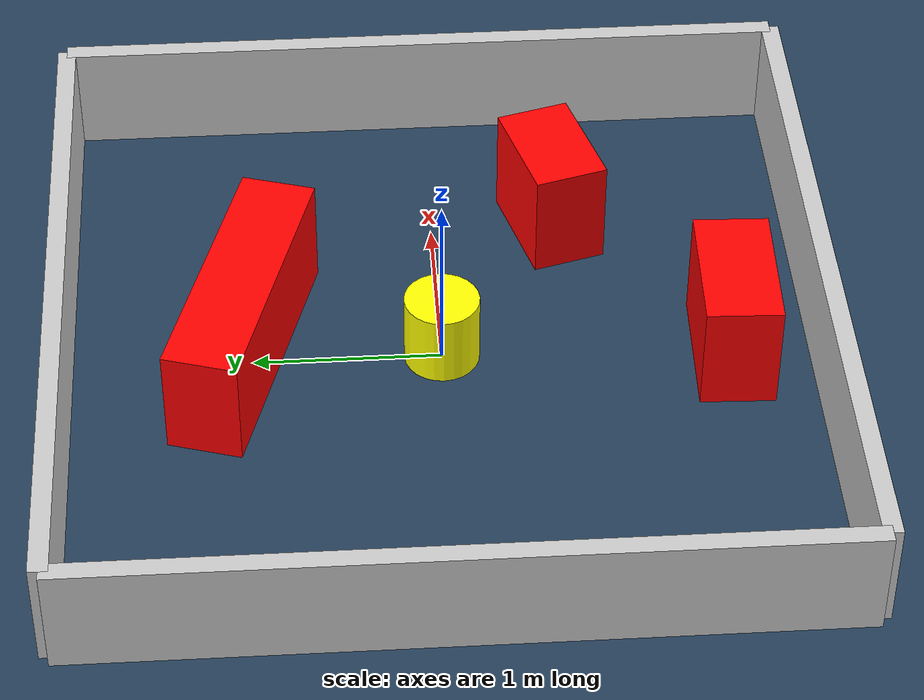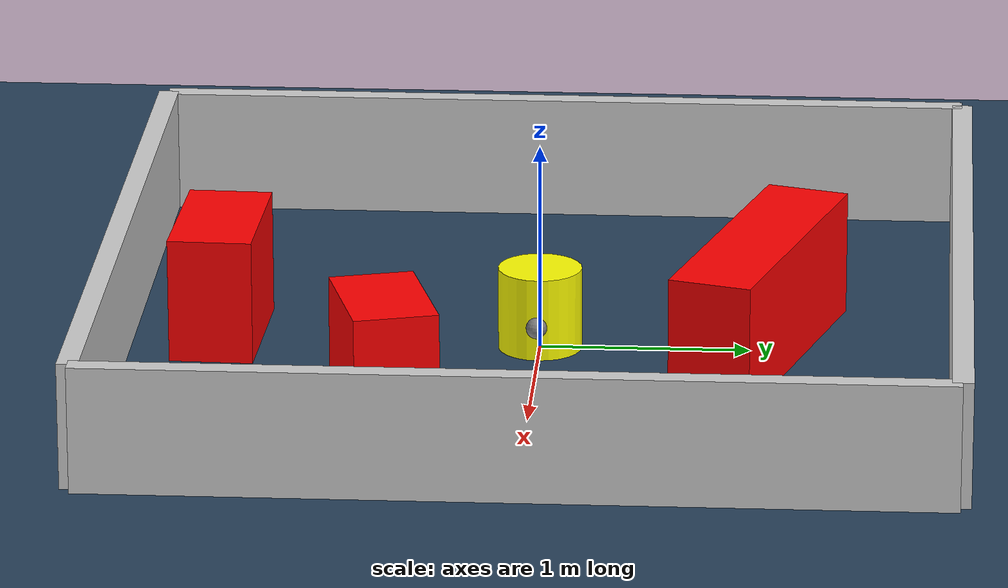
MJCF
<?xml version="1.0" ?>
<mujoco model="generated_environment">
  <option timestep="0.01" integrator="RK4" cone="elliptic"/>
  <default>
    <geom density="1"/>
  </default>
  <asset>
    <texture builtin="gradient" height="3072" rgb1="0.3 0.5 0.7" rgb2="0 0 0" type="skybox" width="512"/>
    <texture builtin="checker" height="300" mark="edge" markrgb="0.8 0.8 0.8" name="groundplane" rgb1="0.2 0.3 0.4" rgb2="0.1 0.2 0.3" type="2d" width="300"/>
    <material name="groundplane" reflectance="0.2" texrepeat="5 5" texture="groundplane" texuniform="true"/>
    <material name="robot" rgba="0.0 1.0 0.0 1"/>
  </asset>
  <worldbody>
    <light dir="0 0 -1" directional="true" pos="0 0 1.5"/>
    <geom condim="4" friction="1.0 0.005 0.001" material="groundplane" name="floor" size="0 0 0.05" type="plane"/>
    <body name="walls">
      <geom name="wall_1" condim="4" pos="-2.0 0.0 0.3" rgba="0.800000011920929 0.800000011920929 0.800000011920929 1.0" size="0.05 2.0 0.3" type="box"/>
      <geom name="wall_2" condim="4" pos="2.0 0.0 0.3" rgba="0.800000011920929 0.800000011920929 0.800000011920929 1.0" size="0.05 2.0 0.3" type="box"/>
      <geom name="wall_3" condim="4" pos="0.0 -2.0 0.3" rgba="0.800000011920929 0.800000011920929 0.800000011920929 1.0" size="2.0 0.05 0.3" type="box"/>
      <geom name="wall_4" condim="4" pos="0.0 2.0 0.3" rgba="0.800000011920929 0.800000011920929 0.800000011920929 1.0" size="2.0 0.05 0.3" type="box"/>
    </body>
    <body name="robot">
      <joint name="joint_x" type="slide" pos="0 0 0" axis="1 0 0"/>
      <joint name="joint_y" type="slide" pos="0 0 0" axis="0 1 0"/>
      <geom name="robot" type="sphere" pos="0.3 0.0 0.2" size="0.05" mass="5." friction="1.0 0.005 0.0001" condim="4" rgba="0.5 0.5 0.5 1.0"/>
      <site name="sensor_ball"/>
    </body>
    <body name="obstacle_movable_1">
      <geom name="obstacle_movable_1" condim="4" pos="0.0 0.0 0.2" euler="0 0 0.0" friction="1.0 0.005 0.001" rgba="1.0 1.0 0.0 1.0" size="0.2 0.2 0.0" type="cylinder" mass="0.1"/>
      <joint type="free"/>
    </body>
    <body name="obstacle_2_static">
      <geom name="obstacle_2_static" condim="4" pos="-0.06761955775645845 -1.533523724377011 0.3" euler="0 0 178.08708120893107" friction="1.0 0.005 0.001" rgba="1 0 0 1" size="0.3813526783180038 0.2 0.3" type="box"/>
    </body>
    <body name="obstacle_3_static">
      <geom name="obstacle_3_static" condim="4" pos="0.05920671602581695 1.0433021896185928 0.3" euler="0 0 343.1107180010378" friction="1.0 0.005 0.001" rgba="1 0 0 1" size="0.7375840298523042 0.2 0.3" type="box"/>
    </body>
    <body name="obstacle_4_static">
      <geom name="obstacle_4_static" condim="4" pos="1.0088118807649482 -0.6621863449884668 0.3" euler="0 0 15.634895437748373" friction="1.0 0.005 0.001" rgba="1 0 0 1" size="0.3100460212376755 0.2 0.3" type="box"/>
    </body>
  </worldbody>
  <actuator>
    <motor name="actuator_x" joint="joint_x" gear="1" ctrlrange="-1 1"/>
    <motor name="actuator_y" joint="joint_y" gear="1" ctrlrange="-1 1"/>
  </actuator>
</mujoco>
